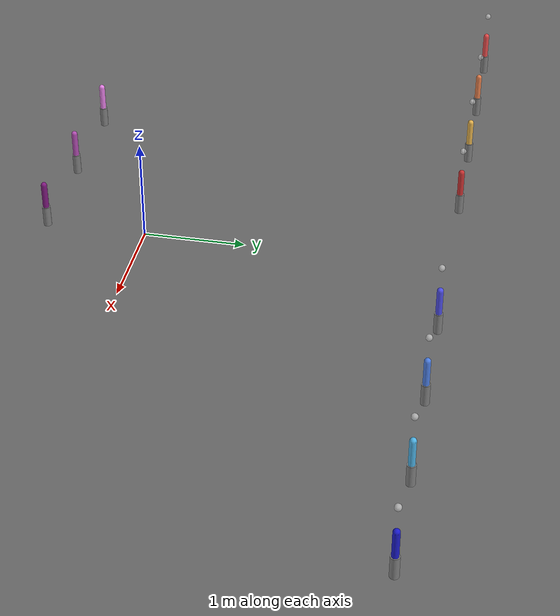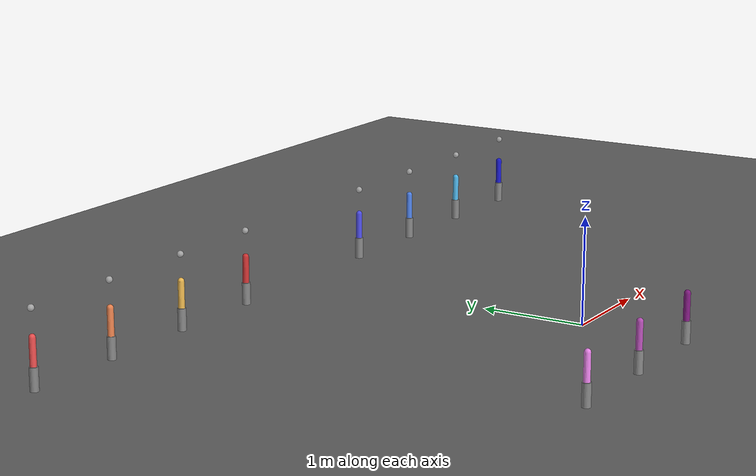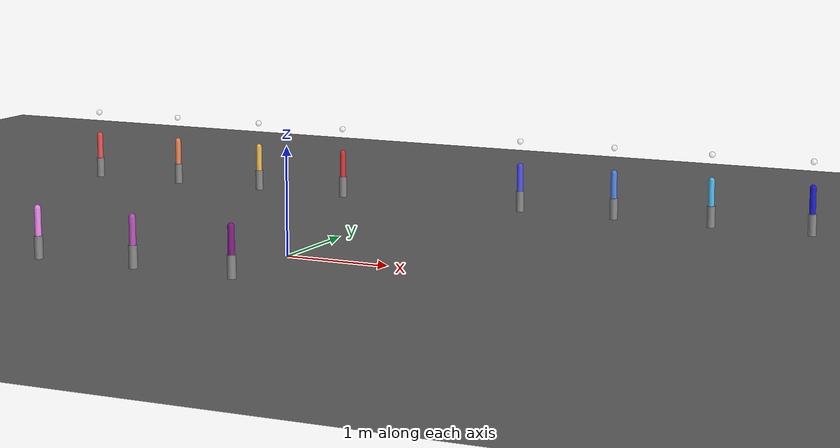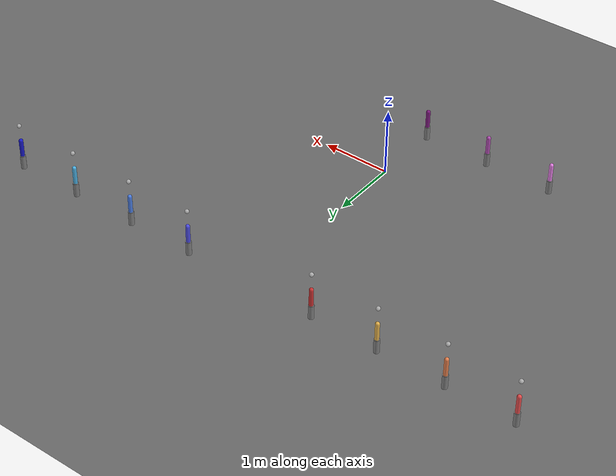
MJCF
<!-- 关节动力学参数: stiffness, damping, frictionloss, armature -->
<mujoco model="joint_dynamics">
    <compiler angle="radian" autolimits="true"/>
    <option timestep="0.002" gravity="0 0 -9.81"/>

    <visual>
        <global realtime="1"/>
        <quality shadowsize="1024"/>
        <headlight diffuse="1 1 1" specular="0.5 0.5 0.5" active="1"/>
    </visual>

    <asset>
        <texture name="grid" type="2d" builtin="checker" width="512" height="512"
                 rgb1=".15 .15 .15" rgb2=".7 .7 .7"/>
        <material name="grid" texture="grid"/>
    </asset>

    <worldbody>
        <geom name="floor" type="plane" size="20 20 .01" material="grid" condim="3"/>

        <!-- stiffness对比: 不同弹簧刚度的hinge关节 -->
        <body pos="-4 3 0">
            <geom type="cylinder" size="0.04 0.2" rgba=".5 .5 .5 1"/>
            <body pos="0 0 0.2">
                <joint type="hinge" axis="0 1 0" stiffness="0" damping="0.005"/>
                <geom type="capsule" size="0.03 0.25" rgba=".9 .3 .3 1"/>
            </body>
        </body>
        <body pos="-3 3 0">
            <geom type="cylinder" size="0.04 0.2" rgba=".5 .5 .5 1"/>
            <body pos="0 0 0.2">
                <joint type="hinge" axis="0 1 0" stiffness="0.5" damping="0.005"/>
                <geom type="capsule" size="0.03 0.25" rgba=".9 .5 .3 1"/>
            </body>
        </body>
        <body pos="-2 3 0">
            <geom type="cylinder" size="0.04 0.2" rgba=".5 .5 .5 1"/>
            <body pos="0 0 0.2">
                <joint type="hinge" axis="0 1 0" stiffness="2.0" damping="0.005"/>
                <geom type="capsule" size="0.03 0.25" rgba=".9 .7 .3 1"/>
            </body>
        </body>
        <body pos="-1 3 0">
            <geom type="cylinder" size="0.04 0.2" rgba=".5 .5 .5 1"/>
            <body pos="0 0 0.2">
                <joint type="hinge" axis="0 1 0" stiffness="10" damping="0.01"/>
                <geom type="capsule" size="0.03 0.25" rgba=".8 .2 .2 1"/>
            </body>
        </body>

        <!-- 标签: stiffness 0 / 0.5 / 2 / 10 -->
        <site pos="-4 3 0.7" type="sphere" size="0.03" rgba="1 1 1 .5"/>
        <site pos="-3 3 0.7" type="sphere" size="0.03" rgba="1 1 1 .5"/>
        <site pos="-2 3 0.7" type="sphere" size="0.03" rgba="1 1 1 .5"/>
        <site pos="-1 3 0.7" type="sphere" size="0.03" rgba="1 1 1 .5"/>

        <!-- damping对比: 不同阻尼的hinge关节（都设stiffness=2让它们弹回） -->
        <body pos="1 3 0">
            <geom type="cylinder" size="0.04 0.2" rgba=".5 .5 .5 1"/>
            <body pos="0 0 0.2">
                <joint type="hinge" axis="0 1 0" stiffness="2" damping="0.001"/>
                <geom type="capsule" size="0.03 0.25" rgba=".3 .3 .9 1"/>
            </body>
        </body>
        <body pos="2 3 0">
            <geom type="cylinder" size="0.04 0.2" rgba=".5 .5 .5 1"/>
            <body pos="0 0 0.2">
                <joint type="hinge" axis="0 1 0" stiffness="2" damping="0.02"/>
                <geom type="capsule" size="0.03 0.25" rgba=".3 .5 .9 1"/>
            </body>
        </body>
        <body pos="3 3 0">
            <geom type="cylinder" size="0.04 0.2" rgba=".5 .5 .5 1"/>
            <body pos="0 0 0.2">
                <joint type="hinge" axis="0 1 0" stiffness="2" damping="0.1"/>
                <geom type="capsule" size="0.03 0.25" rgba=".3 .7 .9 1"/>
            </body>
        </body>
        <body pos="4 3 0">
            <geom type="cylinder" size="0.04 0.2" rgba=".5 .5 .5 1"/>
            <body pos="0 0 0.2">
                <joint type="hinge" axis="0 1 0" stiffness="2" damping="1.0"/>
                <geom type="capsule" size="0.03 0.25" rgba=".1 .1 .8 1"/>
            </body>
        </body>

        <!-- 标签: damping 0.001 / 0.02 / 0.1 / 1.0 -->
        <site pos="1 3 0.7" type="sphere" size="0.03" rgba="1 1 1 .5"/>
        <site pos="2 3 0.7" type="sphere" size="0.03" rgba="1 1 1 .5"/>
        <site pos="3 3 0.7" type="sphere" size="0.03" rgba="1 1 1 .5"/>
        <site pos="4 3 0.7" type="sphere" size="0.03" rgba="1 1 1 .5"/>

        <!-- frictionloss对比 -->
        <body pos="-2 -1 0">
            <geom type="cylinder" size="0.04 0.2" rgba=".5 .5 .5 1"/>
            <body pos="0 0 0.2">
                <joint type="hinge" axis="0 1 0" frictionloss="0" stiffness="0.5"/>
                <geom type="capsule" size="0.03 0.25" rgba=".9 .5 .9 1"/>
            </body>
        </body>
        <body pos="-1 -1 0">
            <geom type="cylinder" size="0.04 0.2" rgba=".5 .5 .5 1"/>
            <body pos="0 0 0.2">
                <joint type="hinge" axis="0 1 0" frictionloss="0.05" stiffness="0.5"/>
                <geom type="capsule" size="0.03 0.25" rgba=".7 .3 .7 1"/>
            </body>
        </body>
        <body pos="0 -1 0">
            <geom type="cylinder" size="0.04 0.2" rgba=".5 .5 .5 1"/>
            <body pos="0 0 0.2">
                <joint type="hinge" axis="0 1 0" frictionloss="0.2" stiffness="0.5"/>
                <geom type="capsule" size="0.03 0.25" rgba=".5 .1 .5 1"/>
            </body>
        </body>
    </worldbody>
</mujoco>
